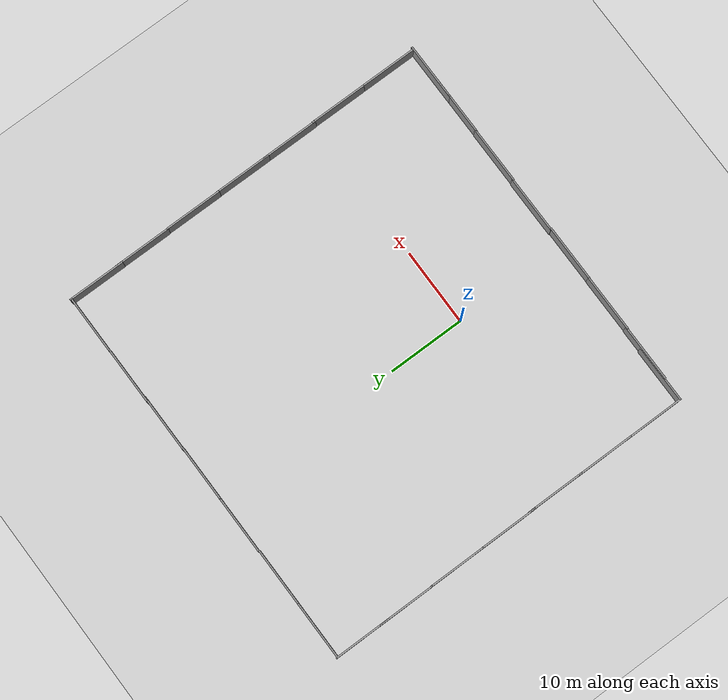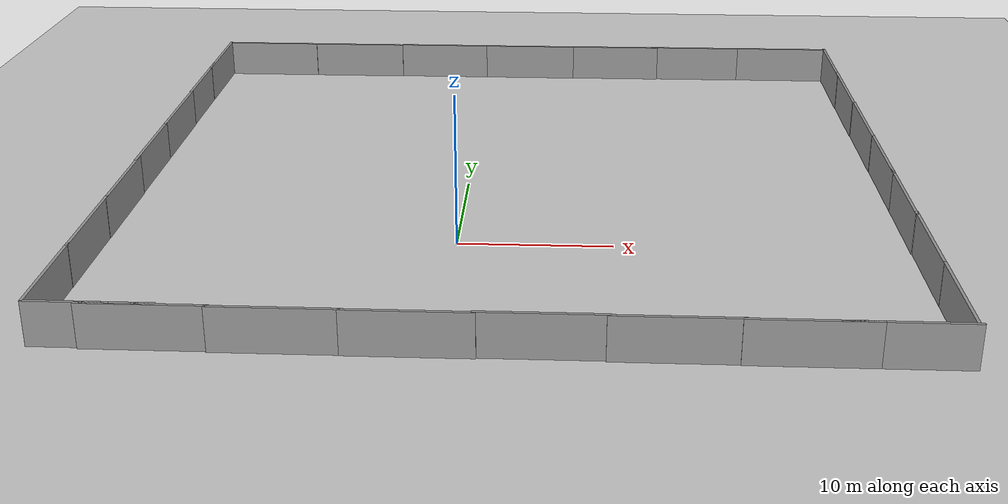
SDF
<sdf version="1.6">
 <world name="default">
  <light name="sun" type="directional">
   <pose>0 0 10 0 -0 0</pose>
   <diffuse>0.8 0.8 0.8 1</diffuse>
   <specular>0.2 0.2 0.2 1</specular>
   <attenuation>
    <range>1000</range>
    <constant>0.9</constant>
    <linear>0.01</linear>
    <quadratic>0.001</quadratic>
   </attenuation>
   <direction>-0.5 0.1 -0.9</direction>
  </light>
  <model name="ground_plane">
   <static>1</static>
   <link name="link">
    <collision name="collision">
     <geometry><plane><normal>0 0 1</normal><size>100 100</size></plane></geometry>
     <surface><friction><ode><mu>100</mu><mu2>50</mu2></ode></friction></surface>
    </collision>
    <visual name="visual">
     <cast_shadows>0</cast_shadows>
     <geometry><plane><normal>0 0 1</normal><size>100 100</size></plane></geometry>
     <material>
      <script><uri>file://media/materials/scripts/gazebo.material</uri><name>Gazebo/Grey</name></script>
     </material>
    </visual>
   </link>
  </model>
  <gravity>0 0 -9.8</gravity>
  <magnetic_field>6e-06 2.3e-05 -4.2e-05</magnetic_field>
  <atmosphere type="adiabatic"/>
  <physics name="default_physics" default="0" type="ode">
   <max_step_size>0.001</max_step_size>
   <real_time_factor>1</real_time_factor>
   <real_time_update_rate>1000</real_time_update_rate>
  </physics>
  <scene><ambient>0.4 0.4 0.4 1</ambient><background>0.7 0.7 0.7 1</background><shadows>1</shadows></scene>
  <audio><device>default</device></audio>
  <spherical_coordinates>
   <surface_model>EARTH_WGS84</surface_model>
   <latitude_deg>0</latitude_deg>
   <longitude_deg>0</longitude_deg>
   <elevation>0</elevation>
   <heading_deg>0</heading_deg>
  </spherical_coordinates>
  <model name="grey_wall">
   <static>1</static>
   <link name="link">
    <pose>0 0 1.4 0 -0 0</pose>
    <collision name="collision"><geometry><box><size>7.5 0.2 2.8</size></box></geometry></collision>
    <visual name="visual">
     <cast_shadows>0</cast_shadows>
     <geometry><box><size>7.5 0.2 2.8</size></box></geometry>
     <material>
      <script>
       <uri>model://grey_wall/materials/scripts</uri>
       <uri>model://grey_wall/materials/textures</uri>
       <name>vrc/grey_wall</name>
      </script>
     </material>
    </visual>
   </link>
   <pose>-11.3629 34.6517 0 0 -0 0</pose>
  </model>
  <model name="grey_wall_0">
   <static>1</static>
   <link name="link">
    <pose>0 0 1.4 0 -0 0</pose>
    <collision name="collision"><geometry><box><size>7.5 0.2 2.8</size></box></geometry></collision>
    <visual name="visual">
     <cast_shadows>0</cast_shadows>
     <geometry><box><size>7.5 0.2 2.8</size></box></geometry>
     <material>
      <script>
       <uri>model://grey_wall/materials/scripts</uri>
       <uri>model://grey_wall/materials/textures</uri>
       <name>vrc/grey_wall</name>
      </script>
     </material>
    </visual>
   </link>
   <pose>3.46299 34.723 0 0 -0 0</pose>
  </model>
  <model name="grey_wall_0_clone">
   <static>1</static>
   <link name="link">
    <pose>0 0 1.4 0 -0 0</pose>
    <collision name="collision"><geometry><box><size>7.5 0.2 2.8</size></box></geometry></collision>
    <visual name="visual">
     <cast_shadows>0</cast_shadows>
     <geometry><box><size>7.5 0.2 2.8</size></box></geometry>
     <material>
      <script>
       <uri>model://grey_wall/materials/scripts</uri>
       <uri>model://grey_wall/materials/textures</uri>
       <name>vrc/grey_wall</name>
      </script>
     </material>
    </visual>
   </link>
   <pose>10.7051 34.7774 0 0 -0 0</pose>
  </model>
  <model name="grey_wall_0_clone_0">
   <static>1</static>
   <link name="link">
    <pose>0 0 1.4 0 -0 0</pose>
    <collision name="collision"><geometry><box><size>7.5 0.2 2.8</size></box></geometry></collision>
    <visual name="visual">
     <cast_shadows>0</cast_shadows>
     <geometry><box><size>7.5 0.2 2.8</size></box></geometry>
     <material>
      <script>
       <uri>model://grey_wall/materials/scripts</uri>
       <uri>model://grey_wall/materials/textures</uri>
       <name>vrc/grey_wall</name>
      </script>
     </material>
    </visual>
   </link>
   <pose>17.5805 34.8495 0 0 -0 0</pose>
  </model>
  <model name="grey_wall_0_clone_1">
   <static>1</static>
   <link name="link">
    <pose>0 0 1.4 0 -0 0</pose>
    <collision name="collision"><geometry><box><size>7.5 0.2 2.8</size></box></geometry></collision>
    <visual name="visual">
     <cast_shadows>0</cast_shadows>
     <geometry><box><size>7.5 0.2 2.8</size></box></geometry>
     <material>
      <script>
       <uri>model://grey_wall/materials/scripts</uri>
       <uri>model://grey_wall/materials/textures</uri>
       <name>vrc/grey_wall</name>
      </script>
     </material>
    </visual>
   </link>
   <pose>24.9696 34.8806 0 0 -0 0</pose>
  </model>
  <model name="grey_wall_0_clone_2">
   <static>1</static>
   <link name="link">
    <pose>0 0 1.4 0 -0 0</pose>
    <collision name="collision"><geometry><box><size>7.5 0.2 2.8</size></box></geometry></collision>
    <visual name="visual">
     <cast_shadows>0</cast_shadows>
     <geometry><box><size>7.5 0.2 2.8</size></box></geometry>
     <material>
      <script>
       <uri>model://grey_wall/materials/scripts</uri>
       <uri>model://grey_wall/materials/textures</uri>
       <name>vrc/grey_wall</name>
      </script>
     </material>
    </visual>
   </link>
   <pose>-3.88389 34.7264 0 0 -0 0</pose>
  </model>
  <model name="grey_wall_0_clone_3">
   <static>1</static>
   <link name="link">
    <pose>0 0 1.4 0 -0 0</pose>
    <collision name="collision"><geometry><box><size>7.5 0.2 2.8</size></box></geometry></collision>
    <visual name="visual">
     <cast_shadows>0</cast_shadows>
     <geometry><box><size>7.5 0.2 2.8</size></box></geometry>
     <material>
      <script>
       <uri>model://grey_wall/materials/scripts</uri>
       <uri>model://grey_wall/materials/textures</uri>
       <name>vrc/grey_wall</name>
      </script>
     </material>
    </visual>
   </link>
   <pose>-18.8737 34.6547 0 0 -0 0</pose>
  </model>
  <model name="grey_wall_0_clone_4">
   <static>1</static>
   <link name="link">
    <pose>0 0 1.4 0 -0 0</pose>
    <collision name="collision"><geometry><box><size>7.5 0.2 2.8</size></box></geometry></collision>
    <visual name="visual">
     <cast_shadows>0</cast_shadows>
     <geometry><box><size>7.5 0.2 2.8</size></box></geometry>
     <material>
      <script>
       <uri>model://grey_wall/materials/scripts</uri>
       <uri>model://grey_wall/materials/textures</uri>
       <name>vrc/grey_wall</name>
      </script>
     </material>
    </visual>
   </link>
   <pose>13.0433 -14.6437 0 0 -0 0</pose>
  </model>
  <model name="grey_wall_0_clone_5">
   <static>1</static>
   <link name="link">
    <pose>0 0 1.4 0 -0 0</pose>
    <collision name="collision"><geometry><box><size>7.5 0.2 2.8</size></box></geometry></collision>
    <visual name="visual">
     <cast_shadows>0</cast_shadows>
     <geometry><box><size>7.5 0.2 2.8</size></box></geometry>
     <material>
      <script>
       <uri>model://grey_wall/materials/scripts</uri>
       <uri>model://grey_wall/materials/textures</uri>
       <name>vrc/grey_wall</name>
      </script>
     </material>
    </visual>
   </link>
   <pose>20.279 -14.6931 0 0 -0 0</pose>
  </model>
  <model name="grey_wall_0_clone_6">
   <static>1</static>
   <link name="link">
    <pose>0 0 1.4 0 -0 0</pose>
    <collision name="collision"><geometry><box><size>7.5 0.2 2.8</size></box></geometry></collision>
    <visual name="visual">
     <cast_shadows>0</cast_shadows>
     <geometry><box><size>7.5 0.2 2.8</size></box></geometry>
     <material>
      <script>
       <uri>model://grey_wall/materials/scripts</uri>
       <uri>model://grey_wall/materials/textures</uri>
       <name>vrc/grey_wall</name>
      </script>
     </material>
    </visual>
   </link>
   <pose>25.4597 -14.692 0 0 -0 0</pose>
  </model>
  <model name="grey_wall_0_clone_7">
   <static>1</static>
   <link name="link">
    <pose>0 0 1.4 0 -0 0</pose>
    <collision name="collision"><geometry><box><size>7.5 0.2 2.8</size></box></geometry></collision>
    <visual name="visual">
     <cast_shadows>0</cast_shadows>
     <geometry><box><size>7.5 0.2 2.8</size></box></geometry>
     <material>
      <script>
       <uri>model://grey_wall/materials/scripts</uri>
       <uri>model://grey_wall/materials/textures</uri>
       <name>vrc/grey_wall</name>
      </script>
     </material>
    </visual>
   </link>
   <pose>5.75532 -14.5651 0 0 -0 0</pose>
  </model>
  <model name="grey_wall_0_clone_8">
   <static>1</static>
   <link name="link">
    <pose>0 0 1.4 0 -0 0</pose>
    <collision name="collision"><geometry><box><size>7.5 0.2 2.8</size></box></geometry></collision>
    <visual name="visual">
     <cast_shadows>0</cast_shadows>
     <geometry><box><size>7.5 0.2 2.8</size></box></geometry>
     <material>
      <script>
       <uri>model://grey_wall/materials/scripts</uri>
       <uri>model://grey_wall/materials/textures</uri>
       <name>vrc/grey_wall</name>
      </script>
     </material>
    </visual>
   </link>
   <pose>-1.49941 -14.6476 0 0 -0 0</pose>
  </model>
  <model name="grey_wall_0_clone_9">
   <static>1</static>
   <link name="link">
    <pose>0 0 1.4 0 -0 0</pose>
    <collision name="collision"><geometry><box><size>7.5 0.2 2.8</size></box></geometry></collision>
    <visual name="visual">
     <cast_shadows>0</cast_shadows>
     <geometry><box><size>7.5 0.2 2.8</size></box></geometry>
     <material>
      <script>
       <uri>model://grey_wall/materials/scripts</uri>
       <uri>model://grey_wall/materials/textures</uri>
       <name>vrc/grey_wall</name>
      </script>
     </material>
    </visual>
   </link>
   <pose>-8.80617 -14.6101 0 0 -0 0</pose>
  </model>
  <model name="grey_wall_0_clone_10">
   <static>1</static>
   <link name="link">
    <pose>0 0 1.4 0 -0 0</pose>
    <collision name="collision"><geometry><box><size>7.5 0.2 2.8</size></box></geometry></collision>
    <visual name="visual">
     <cast_shadows>0</cast_shadows>
     <geometry><box><size>7.5 0.2 2.8</size></box></geometry>
     <material>
      <script>
       <uri>model://grey_wall/materials/scripts</uri>
       <uri>model://grey_wall/materials/textures</uri>
       <name>vrc/grey_wall</name>
      </script>
     </material>
    </visual>
   </link>
   <pose>-15.993 -14.5471 0 0 -0 0</pose>
  </model>
  <model name="grey_wall_0_clone_11">
   <static>1</static>
   <link name="link">
    <pose>0 0 1.4 0 -0 0</pose>
    <collision name="collision"><geometry><box><size>7.5 0.2 2.8</size></box></geometry></collision>
    <visual name="visual">
     <cast_shadows>0</cast_shadows>
     <geometry><box><size>7.5 0.2 2.8</size></box></geometry>
     <material>
      <script>
       <uri>model://grey_wall/materials/scripts</uri>
       <uri>model://grey_wall/materials/textures</uri>
       <name>vrc/grey_wall</name>
      </script>
     </material>
    </visual>
   </link>
   <pose>-18.9358 -14.4353 0 0 -0 0</pose>
  </model>
  <model name="grey_wall_0_clone_12_clone_5_clone">
   <static>1</static>
   <link name="link">
    <pose>0 0 1.4 0 -0 0</pose>
    <collision name="collision"><geometry><box><size>7.5 0.2 2.8</size></box></geometry></collision>
    <visual name="visual">
     <cast_shadows>0</cast_shadows>
     <geometry><box><size>7.5 0.2 2.8</size></box></geometry>
     <material>
      <script>
       <uri>model://grey_wall/materials/scripts</uri>
       <uri>model://grey_wall/materials/textures</uri>
       <name>vrc/grey_wall</name>
      </script>
     </material>
    </visual>
   </link>
   <pose>28.8929 -10.8799 0 0 -0 1.57072</pose>
  </model>
  <model name="grey_wall_0_clone_12_clone_5_clone_clone">
   <static>1</static>
   <link name="link">
    <pose>0 0 1.4 0 -0 0</pose>
    <collision name="collision"><geometry><box><size>7.5 0.2 2.8</size></box></geometry></collision>
    <visual name="visual">
     <cast_shadows>0</cast_shadows>
     <geometry><box><size>7.5 0.2 2.8</size></box></geometry>
     <material>
      <script>
       <uri>model://grey_wall/materials/scripts</uri>
       <uri>model://grey_wall/materials/textures</uri>
       <name>vrc/grey_wall</name>
      </script>
     </material>
    </visual>
   </link>
   <pose>28.8811 -3.62927 0 0 -0 1.57072</pose>
  </model>
  <model name="grey_wall_0_clone_12_clone_5_clone_clone_0">
   <static>1</static>
   <link name="link">
    <pose>0 0 1.4 0 -0 0</pose>
    <collision name="collision"><geometry><box><size>7.5 0.2 2.8</size></box></geometry></collision>
    <visual name="visual">
     <cast_shadows>0</cast_shadows>
     <geometry><box><size>7.5 0.2 2.8</size></box></geometry>
     <material>
      <script>
       <uri>model://grey_wall/materials/scripts</uri>
       <uri>model://grey_wall/materials/textures</uri>
       <name>vrc/grey_wall</name>
      </script>
     </material>
    </visual>
   </link>
   <pose>28.832 3.46811 0 0 -0 1.57072</pose>
  </model>
  <model name="grey_wall_0_clone_12_clone_5_clone_clone_1">
   <static>1</static>
   <link name="link">
    <pose>0 0 1.4 0 -0 0</pose>
    <collision name="collision"><geometry><box><size>7.5 0.2 2.8</size></box></geometry></collision>
    <visual name="visual">
     <cast_shadows>0</cast_shadows>
     <geometry><box><size>7.5 0.2 2.8</size></box></geometry>
     <material>
      <script>
       <uri>model://grey_wall/materials/scripts</uri>
       <uri>model://grey_wall/materials/textures</uri>
       <name>vrc/grey_wall</name>
      </script>
     </material>
    </visual>
   </link>
   <pose>28.8257 10.2325 0 0 -0 1.57072</pose>
  </model>
  <model name="grey_wall_0_clone_12_clone_5_clone_clone_2">
   <static>1</static>
   <link name="link">
    <pose>0 0 1.4 0 -0 0</pose>
    <collision name="collision"><geometry><box><size>7.5 0.2 2.8</size></box></geometry></collision>
    <visual name="visual">
     <cast_shadows>0</cast_shadows>
     <geometry><box><size>7.5 0.2 2.8</size></box></geometry>
     <material>
      <script>
       <uri>model://grey_wall/materials/scripts</uri>
       <uri>model://grey_wall/materials/textures</uri>
       <name>vrc/grey_wall</name>
      </script>
     </material>
    </visual>
   </link>
   <pose>28.7992 17.4245 0 0 -0 1.57072</pose>
  </model>
  <model name="grey_wall_0_clone_12_clone_5_clone_clone_3">
   <static>1</static>
   <link name="link">
    <pose>0 0 1.4 0 -0 0</pose>
    <collision name="collision"><geometry><box><size>7.5 0.2 2.8</size></box></geometry></collision>
    <visual name="visual">
     <cast_shadows>0</cast_shadows>
     <geometry><box><size>7.5 0.2 2.8</size></box></geometry>
     <material>
      <script>
       <uri>model://grey_wall/materials/scripts</uri>
       <uri>model://grey_wall/materials/textures</uri>
       <name>vrc/grey_wall</name>
      </script>
     </material>
    </visual>
   </link>
   <pose>28.7532 24.7821 0 0 -0 1.57072</pose>
  </model>
  <model name="grey_wall_0_clone_12_clone_5_clone_clone_4">
   <static>1</static>
   <link name="link">
    <pose>0 0 1.4 0 -0 0</pose>
    <collision name="collision"><geometry><box><size>7.5 0.2 2.8</size></box></geometry></collision>
    <visual name="visual">
     <cast_shadows>0</cast_shadows>
     <geometry><box><size>7.5 0.2 2.8</size></box></geometry>
     <material>
      <script>
       <uri>model://grey_wall/materials/scripts</uri>
       <uri>model://grey_wall/materials/textures</uri>
       <name>vrc/grey_wall</name>
      </script>
     </material>
    </visual>
   </link>
   <pose>28.7288 31.3441 0 0 -0 1.57072</pose>
  </model>
  <model name="grey_wall_0_clone_12_clone_5_clone_clone_8">
   <static>1</static>
   <link name="link">
    <pose>0 0 1.4 0 -0 0</pose>
    <collision name="collision"><geometry><box><size>7.5 0.2 2.8</size></box></geometry></collision>
    <visual name="visual">
     <cast_shadows>0</cast_shadows>
     <geometry><box><size>7.5 0.2 2.8</size></box></geometry>
     <material>
      <script>
       <uri>model://grey_wall/materials/scripts</uri>
       <uri>model://grey_wall/materials/textures</uri>
       <name>vrc/grey_wall</name>
      </script>
     </material>
    </visual>
   </link>
   <pose>-22.6049 -10.686 0 0 -0 1.57072</pose>
  </model>
  <model name="grey_wall_0_clone_12_clone_5_clone_clone_7">
   <static>1</static>
   <link name="link">
    <pose>0 0 1.4 0 -0 0</pose>
    <collision name="collision"><geometry><box><size>7.5 0.2 2.8</size></box></geometry></collision>
    <visual name="visual">
     <cast_shadows>0</cast_shadows>
     <geometry><box><size>7.5 0.2 2.8</size></box></geometry>
     <material>
      <script>
       <uri>model://grey_wall/materials/scripts</uri>
       <uri>model://grey_wall/materials/textures</uri>
       <name>vrc/grey_wall</name>
      </script>
     </material>
    </visual>
   </link>
   <pose>-22.5889 -3.56599 0 0 -0 1.57072</pose>
  </model>
  <model name="grey_wall_0_clone_12_clone_5_clone_clone_9">
   <static>1</static>
   <link name="link">
    <pose>0 0 1.4 0 -0 0</pose>
    <collision name="collision"><geometry><box><size>7.5 0.2 2.8</size></box></geometry></collision>
    <visual name="visual">
     <cast_shadows>0</cast_shadows>
     <geometry><box><size>7.5 0.2 2.8</size></box></geometry>
     <material>
      <script>
       <uri>model://grey_wall/materials/scripts</uri>
       <uri>model://grey_wall/materials/textures</uri>
       <name>vrc/grey_wall</name>
      </script>
     </material>
    </visual>
   </link>
   <pose>-22.5741 3.48938 0 0 -0 1.57072</pose>
  </model>
  <model name="grey_wall_0_clone_12_clone_5_clone_clone_10">
   <static>1</static>
   <link name="link">
    <pose>0 0 1.4 0 -0 0</pose>
    <collision name="collision"><geometry><box><size>7.5 0.2 2.8</size></box></geometry></collision>
    <visual name="visual">
     <cast_shadows>0</cast_shadows>
     <geometry><box><size>7.5 0.2 2.8</size></box></geometry>
     <material>
      <script>
       <uri>model://grey_wall/materials/scripts</uri>
       <uri>model://grey_wall/materials/textures</uri>
       <name>vrc/grey_wall</name>
      </script>
     </material>
    </visual>
   </link>
   <pose>-22.6183 10.2189 0 0 -0 1.57072</pose>
  </model>
  <model name="grey_wall_0_clone_12_clone_5_clone_clone_11">
   <static>1</static>
   <link name="link">
    <pose>0 0 1.4 0 -0 0</pose>
    <collision name="collision"><geometry><box><size>7.5 0.2 2.8</size></box></geometry></collision>
    <visual name="visual">
     <cast_shadows>0</cast_shadows>
     <geometry><box><size>7.5 0.2 2.8</size></box></geometry>
     <material>
      <script>
       <uri>model://grey_wall/materials/scripts</uri>
       <uri>model://grey_wall/materials/textures</uri>
       <name>vrc/grey_wall</name>
      </script>
     </material>
    </visual>
   </link>
   <pose>-22.6225 17.5817 0 0 -0 1.57072</pose>
  </model>
  <model name="grey_wall_0_clone_12_clone_5_clone_clone_12">
   <static>1</static>
   <link name="link">
    <pose>0 0 1.4 0 -0 0</pose>
    <collision name="collision"><geometry><box><size>7.5 0.2 2.8</size></box></geometry></collision>
    <visual name="visual">
     <cast_shadows>0</cast_shadows>
     <geometry><box><size>7.5 0.2 2.8</size></box></geometry>
     <material>
      <script>
       <uri>model://grey_wall/materials/scripts</uri>
       <uri>model://grey_wall/materials/textures</uri>
       <name>vrc/grey_wall</name>
      </script>
     </material>
    </visual>
   </link>
   <pose>-22.6568 24.9752 0 0 -0 1.57072</pose>
  </model>
  <model name="grey_wall_0_clone_12_clone_5_clone_clone_13">
   <static>1</static>
   <link name="link">
    <pose>0 0 1.4 0 -0 0</pose>
    <collision name="collision"><geometry><box><size>7.5 0.2 2.8</size></box></geometry></collision>
    <visual name="visual">
     <cast_shadows>0</cast_shadows>
     <geometry><box><size>7.5 0.2 2.8</size></box></geometry>
     <material>
      <script>
       <uri>model://grey_wall/materials/scripts</uri>
       <uri>model://grey_wall/materials/textures</uri>
       <name>vrc/grey_wall</name>
      </script>
     </material>
    </visual>
   </link>
   <pose>-22.6509 31.1024 0 0 -0 1.57072</pose>
  </model>
 </world>
</sdf>
